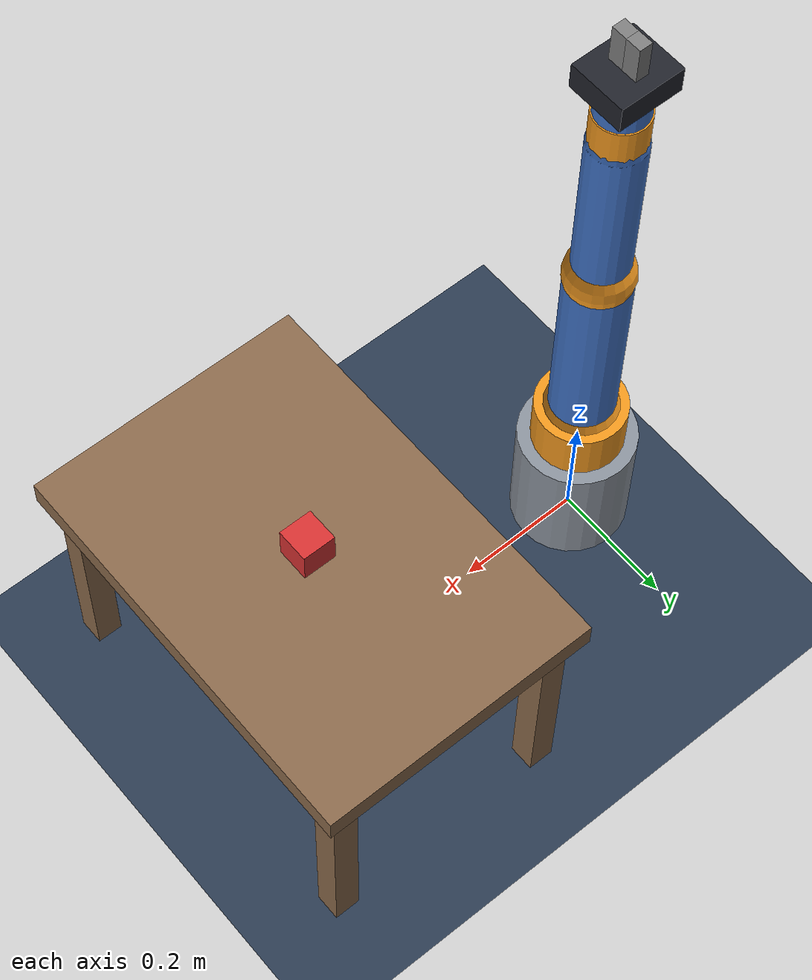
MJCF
<mujoco model="cadenza_arm6">

  <compiler angle="radian" autolimits="true"/>
  <option gravity="0 0 -9.81" timestep="0.002" iterations="50"/>

  <visual>
    <headlight diffuse="0.6 0.6 0.6" ambient="0.35 0.35 0.35" specular="0.1 0.1 0.1"/>
    <rgba haze="0.15 0.25 0.35 1"/>
    <global azimuth="135" elevation="-22"/>
    <quality shadowsize="2048"/>
  </visual>

  <asset>
    <texture type="skybox" builtin="gradient" rgb1="0.3 0.5 0.7" rgb2="0 0 0"
             width="512" height="3072"/>
    <texture type="2d" name="grid" builtin="checker" rgb1="0.22 0.3 0.4"
             rgb2="0.12 0.17 0.24" width="512" height="512"/>
    <material name="grid" texture="grid" texrepeat="8 8" reflectance="0.15"/>
    <material name="metal" rgba="0.55 0.58 0.62 1"/>
    <material name="joint" rgba="0.95 0.6 0.12 1"/>
    <material name="link"  rgba="0.25 0.45 0.78 1"/>
    <material name="grip"  rgba="0.13 0.14 0.17 1"/>
    <material name="cube"  rgba="0.85 0.2 0.2 1"/>
    <material name="table" rgba="0.55 0.42 0.30 1"/>
  </asset>

  <default>
    <joint damping="3" armature="0.05" frictionloss="0.1"/>
    <position kp="600" dampratio="1" forcerange="-200 200"/>
    <geom contype="0" conaffinity="0" condim="3" friction="1 0.05 0.001"/>
    <default class="finger">
      <joint type="slide" damping="8" armature="0.01" range="0 0.045"/>
      <position kp="400" dampratio="1" forcerange="-80 80"/>
      <!-- HAND group: fingers collide with the cube AND the table/floor. -->
      <geom material="grip" friction="2.5 0.2 0.02" condim="4"
            contype="4" conaffinity="3"/>
    </default>
  </default>

  <worldbody>
    <light name="top" pos="0.3 0 2.5" dir="0 0 -1" diffuse="0.7 0.7 0.7"
           castshadow="true"/>
    <geom name="floor" type="plane" size="0 0 0.05" material="grid"
          contype="1" conaffinity="6"/>

    <!-- Work table the arm picks from / places to (WORLD group). -->
    <body name="table" pos="0.5 0 0">
      <geom name="table_top" type="box" size="0.22 0.32 0.02" pos="0 0 0.38" material="table"
            contype="1" conaffinity="6"
            solref="0.004 1" solimp="0.98 0.99 0.001"/>
      <geom name="leg_a" type="box" size="0.02 0.02 0.19" pos="0.18 0.28 0.19" material="table"
            contype="1" conaffinity="6"/>
      <geom name="leg_b" type="box" size="0.02 0.02 0.19" pos="0.18 -0.28 0.19" material="table"
            contype="1" conaffinity="6"/>
      <geom name="leg_c" type="box" size="0.02 0.02 0.19" pos="-0.18 0.28 0.19" material="table"
            contype="1" conaffinity="6"/>
      <geom name="leg_d" type="box" size="0.02 0.02 0.19" pos="-0.18 -0.28 0.19" material="table"
            contype="1" conaffinity="6"/>
    </body>

    <!-- Fixed pedestal (WORLD group). -->
    <geom name="pedestal" type="cylinder" size="0.09 0.1" pos="0 0 0.1" material="metal"
          contype="1" conaffinity="6"/>

    <!-- 6-axis arm. -->
    <body name="shoulder" pos="0 0 0.2" gravcomp="1">
      <joint name="j1" axis="0 0 1" range="-2.9 2.9"/>
      <geom type="cylinder" size="0.07 0.05" pos="0 0 0.03" material="joint"/>
      <body name="upper_arm" pos="0 0 0.06" gravcomp="1">
        <joint name="j2" axis="0 1 0" range="-2.0 2.0"/>
        <geom type="capsule" fromto="0 0 0 0 0 0.34" size="0.05" material="link"/>
        <geom type="sphere" size="0.06" pos="0 0 0" material="joint"/>
        <body name="forearm" pos="0 0 0.34" gravcomp="1">
          <joint name="j3" axis="0 1 0" range="-2.7 2.7"/>
          <geom type="capsule" fromto="0 0 0 0 0 0.28" size="0.042" material="link"/>
          <geom type="sphere" size="0.052" pos="0 0 0" material="joint"/>
          <body name="wrist_roll" pos="0 0 0.28" gravcomp="1">
            <joint name="j4" axis="0 0 1" range="-3.0 3.0"/>
            <geom type="cylinder" size="0.04 0.04" pos="0 0 0.02" material="joint"/>
            <body name="wrist_pitch" pos="0 0 0.05" gravcomp="1">
              <joint name="j5" axis="0 1 0" range="-2.0 2.0"/>
              <geom type="capsule" fromto="0 0 0 0 0 0.05" size="0.038" material="link"/>
              <body name="palm" pos="0 0 0.06" gravcomp="1">
                <joint name="j6" axis="0 0 1" range="-3.0 3.0"/>
                <!-- Palm is part of the HAND group: it stops on the table too. -->
                <geom type="box" size="0.05 0.045 0.02" pos="0 0 0.01" material="grip"
                      contype="4" conaffinity="3"/>
                <site name="pinch" pos="0 0 0.075" size="0.006" rgba="0 1 0 0.6"/>
                <camera name="grip_cam" pos="0.06 0 0.0" xyaxes="0 1 0 1 0 0" fovy="60"/>
                <!-- Parallel fingers: slide along ±y, extend along +z. -->
                <body name="left_finger" pos="0 0.012 0.03">
                  <joint name="grip_left" class="finger" axis="0 1 0"/>
                  <geom type="box" size="0.01 0.012 0.028" pos="0 0 0.028"/>
                </body>
                <body name="right_finger" pos="0 -0.012 0.03">
                  <joint name="grip_right" class="finger" axis="0 -1 0"/>
                  <geom type="box" size="0.01 0.012 0.028" pos="0 0 0.028"/>
                </body>
              </body>
            </body>
          </body>
        </body>
      </body>
    </body>

    <!-- Pickable cube (free body), resting on the table. -->
    <body name="cube" pos="0.5 0.0 0.43">
      <freejoint name="cube_free"/>
      <!-- OBJECT group: cube collides with the gripper/arm AND the floor/table. -->
      <geom name="cube_geom" type="box" size="0.026 0.026 0.026" material="cube"
            mass="0.05" friction="2.5 0.2 0.02" condim="4"
            contype="2" conaffinity="5"/>
    </body>
  </worldbody>

  <equality>
    <!-- Inactive until the controller grasps; then rigidly holds the cube. -->
    <weld name="grasp" body1="palm" body2="cube" active="false"/>
  </equality>

  <actuator>
    <position name="a_j1" joint="j1"/>
    <position name="a_j2" joint="j2"/>
    <position name="a_j3" joint="j3"/>
    <position name="a_j4" joint="j4"/>
    <position name="a_j5" joint="j5"/>
    <position name="a_j6" joint="j6"/>
    <position name="a_grip_left"  class="finger" joint="grip_left"/>
    <position name="a_grip_right" class="finger" joint="grip_right"/>
  </actuator>

  <keyframe>
    <!-- Home: arm gently folded forward over the table, gripper open. -->
    <key name="home"
         qpos="0 0.6 0.9 0 0.6 0 0.04 0.04  0.5 0 0.43 1 0 0 0"
         ctrl="0 0.6 0.9 0 0.6 0 0.04 0.04"/>
  </keyframe>
</mujoco>
